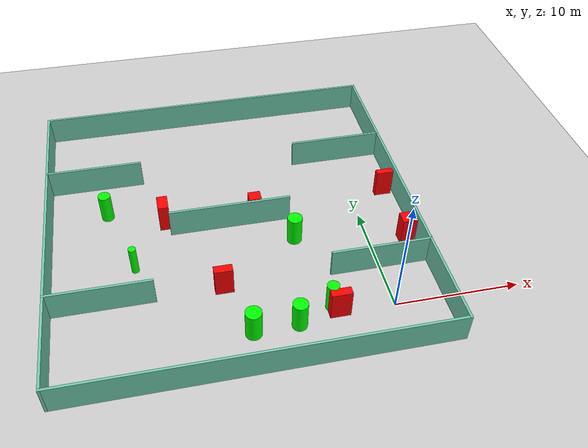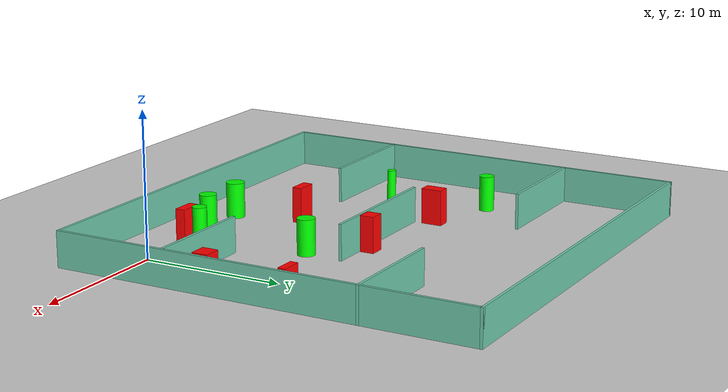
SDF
<sdf version="1.7">
 <world name="default">
  <light name="sun" type="directional">
   <pose>0 0 10 0 -0 0</pose>
   <diffuse>0.8 0.8 0.8 1</diffuse>
   <specular>0.2 0.2 0.2 1</specular>
   <attenuation>
    <range>1000</range>
    <constant>0.9</constant>
    <linear>0.01</linear>
    <quadratic>0.001</quadratic>
   </attenuation>
   <direction>-0.5 0.1 -0.9</direction>
   <spot><inner_angle>0</inner_angle><outer_angle>0</outer_angle><falloff>0</falloff></spot>
  </light>
  <model name="ground_plane">
   <static>1</static>
   <link name="link">
    <collision name="collision">
     <geometry><plane><normal>0 0 1</normal><size>100 100</size></plane></geometry>
     <surface>
      <contact><collide_bitmask>65535</collide_bitmask></contact>
      <friction><ode><mu>100</mu><mu2>50</mu2></ode></friction>
     </surface>
    </collision>
    <visual name="visual">
     <cast_shadows>0</cast_shadows>
     <geometry><plane><normal>0 0 1</normal><size>100 100</size></plane></geometry>
     <material>
      <script><uri>file://media/materials/scripts/gazebo.material</uri><name>Gazebo/Grey</name></script>
     </material>
    </visual>
   </link>
  </model>
  <gravity>0 0 -9.8</gravity>
  <magnetic_field>6e-06 2.3e-05 -4.2e-05</magnetic_field>
  <atmosphere type="adiabatic"/>
  <physics type="ode">
   <max_step_size>0.001</max_step_size>
   <real_time_factor>1</real_time_factor>
   <real_time_update_rate>1000</real_time_update_rate>
  </physics>
  <scene><ambient>0.4 0.4 0.4 1</ambient><background>0.7 0.7 0.7 1</background><shadows>1</shadows></scene>
  <spherical_coordinates>
   <surface_model>EARTH_WGS84</surface_model>
   <latitude_deg>0</latitude_deg>
   <longitude_deg>0</longitude_deg>
   <elevation>0</elevation>
   <heading_deg>0</heading_deg>
  </spherical_coordinates>
  <model name="my_base_walls">
   <link name="Wall_10">
    <collision name="Wall_10_Collision">
     <geometry><box><size>8.2 0.2 2.5</size></box></geometry>
     <pose>0 0 1.25 0 -0 0</pose>
    </collision>
    <visual name="Wall_10_Visual">
     <pose>0 0 1.25 0 -0 0</pose>
     <geometry><box><size>8.2 0.2 2.5</size></box></geometry>
     <material>
      <script><uri>file://media/materials/scripts/gazebo.material</uri><name>Gazebo/Grey</name></script>
      <ambient>0.435294 0.796078 0.67451 1</ambient>
     </material>
     <meta><layer>0</layer></meta>
    </visual>
    <pose>-11 -7 0 0 -0 0</pose>
   </link>
   <link name="Wall_12">
    <collision name="Wall_12_Collision">
     <geometry><box><size>8.2 0.2 2.5</size></box></geometry>
     <pose>0 0 1.25 0 -0 0</pose>
    </collision>
    <visual name="Wall_12_Visual">
     <pose>0 0 1.25 0 -0 0</pose>
     <geometry><box><size>8.2 0.2 2.5</size></box></geometry>
     <material>
      <script><uri>file://media/materials/scripts/gazebo.material</uri><name>Gazebo/Grey</name></script>
      <ambient>0.435294 0.796078 0.67451 1</ambient>
     </material>
     <meta><layer>0</layer></meta>
    </visual>
    <pose>-11 7 0 0 -0 0</pose>
   </link>
   <link name="Wall_14">
    <collision name="Wall_14_Collision">
     <geometry><box><size>8.2 0.2 2.5</size></box></geometry>
     <pose>0 0 1.25 0 -0 0</pose>
    </collision>
    <visual name="Wall_14_Visual">
     <pose>0 0 1.25 0 -0 0</pose>
     <geometry><box><size>8.2 0.2 2.5</size></box></geometry>
     <material>
      <script><uri>file://media/materials/scripts/gazebo.material</uri><name>Gazebo/Grey</name></script>
      <ambient>0.435294 0.796078 0.67451 1</ambient>
     </material>
     <meta><layer>0</layer></meta>
    </visual>
    <pose>11 7 0 0 -0 3.14159</pose>
   </link>
   <link name="Wall_16">
    <collision name="Wall_16_Collision">
     <geometry><box><size>10.2 0.2 2.5</size></box></geometry>
     <pose>0 0 1.25 0 -0 0</pose>
    </collision>
    <visual name="Wall_16_Visual">
     <pose>0 0 1.25 0 -0 0</pose>
     <geometry><box><size>10.2 0.2 2.5</size></box></geometry>
     <material>
      <script><uri>file://media/materials/scripts/gazebo.material</uri><name>Gazebo/Grey</name></script>
      <ambient>0.435294 0.796078 0.67451 1</ambient>
     </material>
     <meta><layer>0</layer></meta>
    </visual>
    <pose>0 0 0 0 -0 3.14159</pose>
   </link>
   <link name="Wall_2">
    <collision name="Wall_2_Collision">
     <geometry><box><size>30.2 0.2 2.5</size></box></geometry>
     <pose>0 0 1.25 0 -0 0</pose>
    </collision>
    <visual name="Wall_2_Visual">
     <pose>0 0 1.25 0 -0 0</pose>
     <geometry><box><size>30.2 0.2 2.5</size></box></geometry>
     <material>
      <script><uri>file://media/materials/scripts/gazebo.material</uri><name>Gazebo/Grey</name></script>
      <ambient>0.435294 0.796078 0.67451 1</ambient>
     </material>
     <meta><layer>0</layer></meta>
    </visual>
    <pose>0 -15 0 0 -0 3.14159</pose>
   </link>
   <link name="Wall_3">
    <collision name="Wall_3_Collision">
     <geometry><box><size>30.2 0.2 2.5</size></box></geometry>
     <pose>0 0 1.25 0 -0 0</pose>
    </collision>
    <visual name="Wall_3_Visual">
     <pose>0 0 1.25 0 -0 0</pose>
     <geometry><box><size>30.2 0.2 2.5</size></box></geometry>
     <material>
      <script><uri>file://media/materials/scripts/gazebo.material</uri><name>Gazebo/Grey</name></script>
      <ambient>0.435294 0.796078 0.67451 1</ambient>
     </material>
     <meta><layer>0</layer></meta>
    </visual>
    <pose>-15 0 0 0 -0 1.5708</pose>
   </link>
   <link name="Wall_4">
    <collision name="Wall_4_Collision">
     <geometry><box><size>30.2 0.2 2.5</size></box></geometry>
     <pose>0 0 1.25 0 -0 0</pose>
    </collision>
    <visual name="Wall_4_Visual">
     <pose>0 0 1.25 0 -0 0</pose>
     <geometry><box><size>30.2 0.2 2.5</size></box></geometry>
     <material>
      <script><uri>file://media/materials/scripts/gazebo.material</uri><name>Gazebo/Grey</name></script>
      <ambient>0.435294 0.796078 0.67451 1</ambient>
     </material>
     <meta><layer>0</layer></meta>
    </visual>
    <pose>0 15 0 0 -0 0</pose>
   </link>
   <link name="Wall_6">
    <collision name="Wall_6_Collision">
     <geometry><box><size>30.2 0.2 2.5</size></box></geometry>
     <pose>0 0 1.25 0 -0 0</pose>
    </collision>
    <visual name="Wall_6_Visual">
     <pose>0 0 1.25 0 -0 0</pose>
     <geometry><box><size>30.2 0.2 2.5</size></box></geometry>
     <material>
      <script><uri>file://media/materials/scripts/gazebo.material</uri><name>Gazebo/Grey</name></script>
      <ambient>0.435294 0.796078 0.67451 1</ambient>
     </material>
     <meta><layer>0</layer></meta>
    </visual>
    <pose>15 0 0 0 -0 1.5708</pose>
   </link>
   <link name="Wall_8">
    <collision name="Wall_8_Collision">
     <geometry><box><size>8.2 0.2 2.5</size></box></geometry>
     <pose>0 0 1.25 0 -0 0</pose>
    </collision>
    <visual name="Wall_8_Visual">
     <pose>0 0 1.25 0 -0 0</pose>
     <geometry><box><size>8.2 0.2 2.5</size></box></geometry>
     <material>
      <script><uri>file://media/materials/scripts/gazebo.material</uri><name>Gazebo/Grey</name></script>
      <ambient>0.435294 0.796078 0.67451 1</ambient>
     </material>
     <meta><layer>0</layer></meta>
    </visual>
    <pose>11 -7 0 0 -0 3.14159</pose>
   </link>
   <static>1</static>
   <pose>-11 11 0 0 -0 0</pose>
  </model>
  <model name="cylinder1">
   <static>1</static>
   <link name="link">
    <inertial>
     <mass>1</mass>
     <inertia><ixx>0.5</ixx><ixy>0</ixy><ixz>0</ixz><iyy>0.5</iyy><iyz>0</iyz><izz>1</izz></inertia>
    </inertial>
    <collision name="collision">
     <geometry><cylinder><radius>0.5245013501305642</radius><length>2.5</length></cylinder></geometry>
    </collision>
    <visual name="visual">
     <geometry><cylinder><radius>0.5245013501305642</radius><length>2.5</length></cylinder></geometry>
     <material>
      <ambient>0 1 0 1</ambient>
      <diffuse>0 1 0 1</diffuse>
      <specular>0.1 0.1 0.1 1</specular>
      <emissive>0 0 0 0</emissive>
     </material>
    </visual>
   </link>
   <pose>-21.22061205146915 14.121374031072456 1.25 0 0 0</pose>
  </model>
  <model name="cylinder2">
   <static>1</static>
   <link name="link">
    <inertial>
     <mass>1</mass>
     <inertia><ixx>0.5</ixx><ixy>0</ixy><ixz>0</ixz><iyy>0.5</iyy><iyz>0</iyz><izz>1</izz></inertia>
    </inertial>
    <collision name="collision">
     <geometry><cylinder><radius>0.6434990853527063</radius><length>2.5</length></cylinder></geometry>
    </collision>
    <visual name="visual">
     <geometry><cylinder><radius>0.6434990853527063</radius><length>2.5</length></cylinder></geometry>
     <material>
      <ambient>0 1 0 1</ambient>
      <diffuse>0 1 0 1</diffuse>
      <specular>0.1 0.1 0.1 1</specular>
      <emissive>0 0 0 0</emissive>
     </material>
    </visual>
   </link>
   <pose>-11.138792546849025 -0.5429887737275627 1.25 0 0 0</pose>
  </model>
  <model name="cylinder3">
   <static>1</static>
   <link name="link">
    <inertial>
     <mass>1</mass>
     <inertia><ixx>0.5</ixx><ixy>0</ixy><ixz>0</ixz><iyy>0.5</iyy><iyz>0</iyz><izz>1</izz></inertia>
    </inertial>
    <collision name="collision">
     <geometry><cylinder><radius>0.597447350609093</radius><length>2.5</length></cylinder></geometry>
    </collision>
    <visual name="visual">
     <geometry><cylinder><radius>0.597447350609093</radius><length>2.5</length></cylinder></geometry>
     <material>
      <ambient>0 1 0 1</ambient>
      <diffuse>0 1 0 1</diffuse>
      <specular>0.1 0.1 0.1 1</specular>
      <emissive>0 0 0 0</emissive>
     </material>
    </visual>
   </link>
   <pose>-7.649139756915538 -0.45879700061090034 1.25 0 0 0</pose>
  </model>
  <model name="cylinder4">
   <static>1</static>
   <link name="link">
    <inertial>
     <mass>1</mass>
     <inertia><ixx>0.5</ixx><ixy>0</ixy><ixz>0</ixz><iyy>0.5</iyy><iyz>0</iyz><izz>1</izz></inertia>
    </inertial>
    <collision name="collision">
     <geometry><cylinder><radius>0.4902963814802792</radius><length>2.5</length></cylinder></geometry>
    </collision>
    <visual name="visual">
     <geometry><cylinder><radius>0.4902963814802792</radius><length>2.5</length></cylinder></geometry>
     <material>
      <ambient>0 1 0 1</ambient>
      <diffuse>0 1 0 1</diffuse>
      <specular>0.1 0.1 0.1 1</specular>
      <emissive>0 0 0 0</emissive>
     </material>
    </visual>
   </link>
   <pose>-4.859118449757764 0.7598024841523046 1.25 0 0 0</pose>
  </model>
  <model name="cylinder5">
   <static>1</static>
   <link name="link">
    <inertial>
     <mass>1</mass>
     <inertia><ixx>0.5</ixx><ixy>0</ixy><ixz>0</ixz><iyy>0.5</iyy><iyz>0</iyz><izz>1</izz></inertia>
    </inertial>
    <collision name="collision">
     <geometry><cylinder><radius>0.6177992812341072</radius><length>2.5</length></cylinder></geometry>
    </collision>
    <visual name="visual">
     <geometry><cylinder><radius>0.6177992812341072</radius><length>2.5</length></cylinder></geometry>
     <material>
      <ambient>0 1 0 1</ambient>
      <diffuse>0 1 0 1</diffuse>
      <specular>0.1 0.1 0.1 1</specular>
      <emissive>0 0 0 0</emissive>
     </material>
    </visual>
   </link>
   <pose>-6.056166105290856 8.350053228697982 1.25 0 0 0</pose>
  </model>
  <model name="cylinder6">
   <static>1</static>
   <link name="link">
    <inertial>
     <mass>1</mass>
     <inertia><ixx>0.5</ixx><ixy>0</ixy><ixz>0</ixz><iyy>0.5</iyy><iyz>0</iyz><izz>1</izz></inertia>
    </inertial>
    <collision name="collision">
     <geometry><cylinder><radius>0.30564754197526706</radius><length>2.5</length></cylinder></geometry>
    </collision>
    <visual name="visual">
     <geometry><cylinder><radius>0.30564754197526706</radius><length>2.5</length></cylinder></geometry>
     <material>
      <ambient>0 1 0 1</ambient>
      <diffuse>0 1 0 1</diffuse>
      <specular>0.1 0.1 0.1 1</specular>
      <emissive>0 0 0 0</emissive>
     </material>
    </visual>
   </link>
   <pose>-19.296617212354157 7.472879710124657 1.25 0 0 0</pose>
  </model>
  <model name="box1">
   <static>1</static>
   <link name="link">
    <inertial>
     <mass>1</mass>
     <inertia><ixx>0.083</ixx><ixy>0</ixy><ixz>0</ixz><iyy>0.083</iyy><iyz>0</iyz><izz>0.083</izz></inertia>
    </inertial>
    <collision name="collision">
     <geometry><box><size>1.0498143043035237 0.9788965209618716 2.5</size></box></geometry>
    </collision>
    <visual name="visual">
     <geometry><box><size>1.0498143043035237 0.9788965209618716 2.5</size></box></geometry>
     <material>
      <ambient>1 0 0 1</ambient>
      <diffuse>1 0 0 1</diffuse>
      <specular>0.1 0.1 0.1 1</specular>
      <emissive>0 0 0 0</emissive>
     </material>
    </visual>
    <sensor name="my_contact" type="contact">
     <contact><collision>box_collision</collision><topic>__default_topic__</topic></contact>
    </sensor>
   </link>
   <pose>-8.787934483507179 11.648093696757842 1.25 0 0 0</pose>
  </model>
  <model name="box2">
   <static>1</static>
   <link name="link">
    <inertial>
     <mass>1</mass>
     <inertia><ixx>0.083</ixx><ixy>0</ixy><ixz>0</ixz><iyy>0.083</iyy><iyz>0</iyz><izz>0.083</izz></inertia>
    </inertial>
    <collision name="collision">
     <geometry><box><size>1.2114469862168091 1.1195371597064805 2.5</size></box></geometry>
    </collision>
    <visual name="visual">
     <geometry><box><size>1.2114469862168091 1.1195371597064805 2.5</size></box></geometry>
     <material>
      <ambient>1 0 0 1</ambient>
      <diffuse>1 0 0 1</diffuse>
      <specular>0.1 0.1 0.1 1</specular>
      <emissive>0 0 0 0</emissive>
     </material>
    </visual>
    <sensor name="my_contact" type="contact">
     <contact><collision>box_collision</collision><topic>__default_topic__</topic></contact>
    </sensor>
   </link>
   <pose>3.0651315704156055 6.63432123800661 1.25 0 0 0</pose>
  </model>
  <model name="box3">
   <static>1</static>
   <link name="link">
    <inertial>
     <mass>1</mass>
     <inertia><ixx>0.083</ixx><ixy>0</ixy><ixz>0</ixz><iyy>0.083</iyy><iyz>0</iyz><izz>0.083</izz></inertia>
    </inertial>
    <collision name="collision">
     <geometry><box><size>1.4663524963522658 0.6892951152932436 2.5</size></box></geometry>
    </collision>
    <visual name="visual">
     <geometry><box><size>1.4663524963522658 0.6892951152932436 2.5</size></box></geometry>
     <material>
      <ambient>1 0 0 1</ambient>
      <diffuse>1 0 0 1</diffuse>
      <specular>0.1 0.1 0.1 1</specular>
      <emissive>0 0 0 0</emissive>
     </material>
    </visual>
    <sensor name="my_contact" type="contact">
     <contact><collision>box_collision</collision><topic>__default_topic__</topic></contact>
    </sensor>
   </link>
   <pose>-12.633001965158206 4.0345435459793535 1.25 0 0 0</pose>
  </model>
  <model name="box4">
   <static>1</static>
   <link name="link">
    <inertial>
     <mass>1</mass>
     <inertia><ixx>0.083</ixx><ixy>0</ixy><ixz>0</ixz><iyy>0.083</iyy><iyz>0</iyz><izz>0.083</izz></inertia>
    </inertial>
    <collision name="collision">
     <geometry><box><size>1.6195057433823103 0.691937570866181 2.5</size></box></geometry>
    </collision>
    <visual name="visual">
     <geometry><box><size>1.6195057433823103 0.691937570866181 2.5</size></box></geometry>
     <material>
      <ambient>1 0 0 1</ambient>
      <diffuse>1 0 0 1</diffuse>
      <specular>0.1 0.1 0.1 1</specular>
      <emissive>0 0 0 0</emissive>
     </material>
    </visual>
    <sensor name="my_contact" type="contact">
     <contact><collision>box_collision</collision><topic>__default_topic__</topic></contact>
    </sensor>
   </link>
   <pose>-4.433790947667665 0.045789207309935076 1.25 0 0 0</pose>
  </model>
  <model name="box5">
   <static>1</static>
   <link name="link">
    <inertial>
     <mass>1</mass>
     <inertia><ixx>0.083</ixx><ixy>0</ixy><ixz>0</ixz><iyy>0.083</iyy><iyz>0</iyz><izz>0.083</izz></inertia>
    </inertial>
    <collision name="collision">
     <geometry><box><size>0.8930207025419152 1.4762220020003975 2.5</size></box></geometry>
    </collision>
    <visual name="visual">
     <geometry><box><size>0.8930207025419152 1.4762220020003975 2.5</size></box></geometry>
     <material>
      <ambient>1 0 0 1</ambient>
      <diffuse>1 0 0 1</diffuse>
      <specular>0.1 0.1 0.1 1</specular>
      <emissive>0 0 0 0</emissive>
     </material>
    </visual>
    <sensor name="my_contact" type="contact">
     <contact><collision>box_collision</collision><topic>__default_topic__</topic></contact>
    </sensor>
   </link>
   <pose>-16.485166716860427 12.370134152621905 1.25 0 0 0</pose>
  </model>
  <model name="box6">
   <static>1</static>
   <link name="link">
    <inertial>
     <mass>1</mass>
     <inertia><ixx>0.083</ixx><ixy>0</ixy><ixz>0</ixz><iyy>0.083</iyy><iyz>0</iyz><izz>0.083</izz></inertia>
    </inertial>
    <collision name="collision">
     <geometry><box><size>1.4504174532372236 0.5330012833316657 2.5</size></box></geometry>
    </collision>
    <visual name="visual">
     <geometry><box><size>1.4504174532372236 0.5330012833316657 2.5</size></box></geometry>
     <material>
      <ambient>1 0 0 1</ambient>
      <diffuse>1 0 0 1</diffuse>
      <specular>0.1 0.1 0.1 1</specular>
      <emissive>0 0 0 0</emissive>
     </material>
    </visual>
    <sensor name="my_contact" type="contact">
     <contact><collision>box_collision</collision><topic>__default_topic__</topic></contact>
    </sensor>
   </link>
   <pose>2.938849560685444 12.551060519416096 1.25 0 0 0</pose>
  </model>
 </world>
</sdf>
